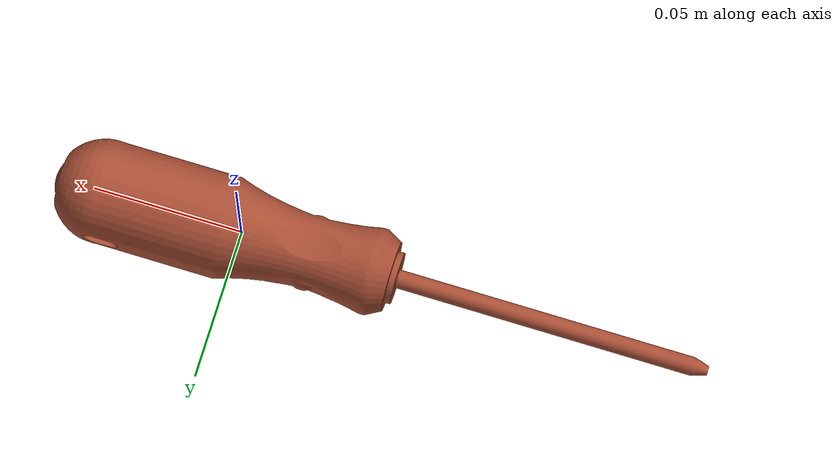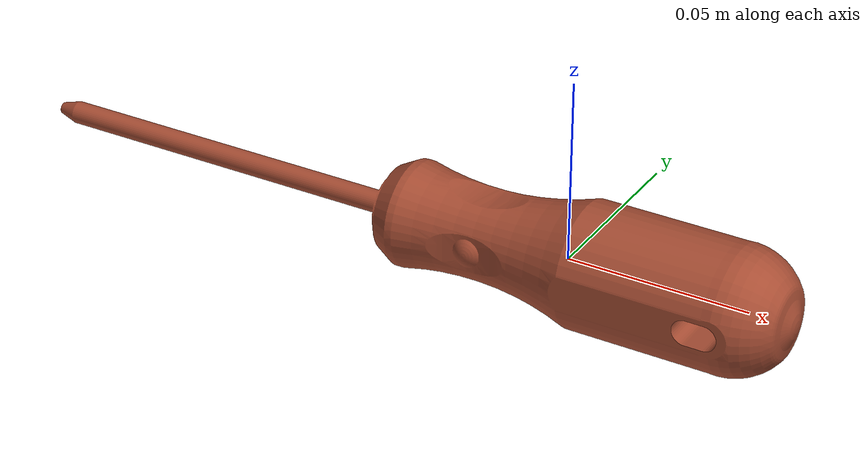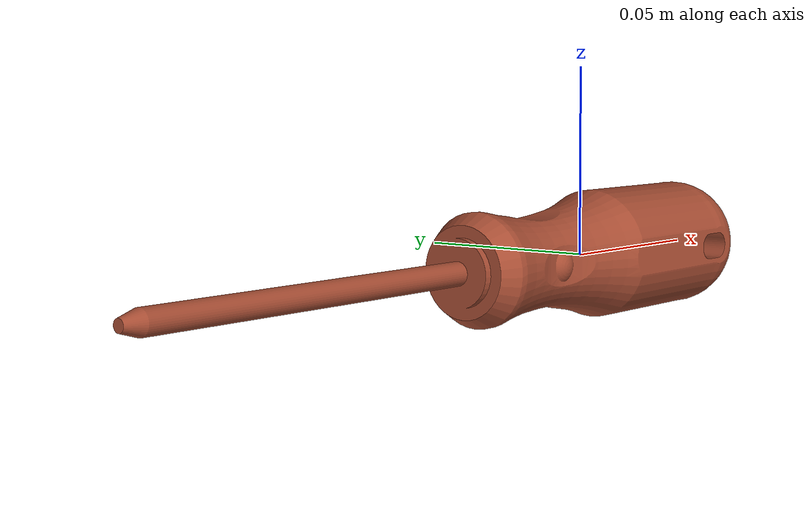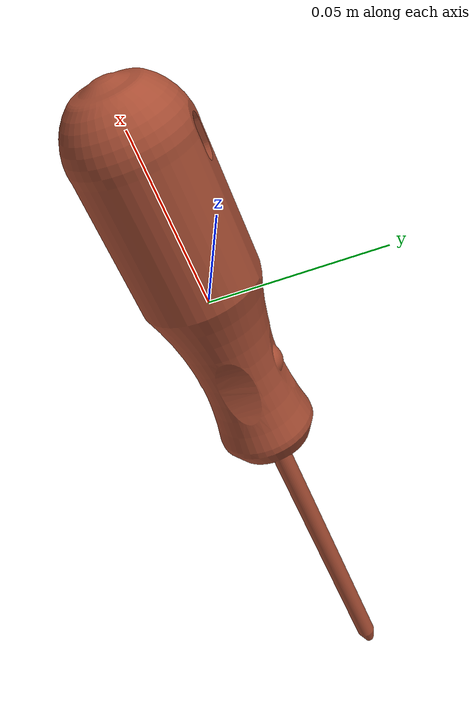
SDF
<?xml version="1.0" ?>
<sdf version="1.6">
  <model name="YCB_phillips_screwdriver">
    <static>false</static>
    <link name="link">
      <inertial>
        <mass>1.0</mass>
        <inertia>
          <ixx>0.001</ixx>
          <iyy>0.001</iyy>
          <izz>0.001</izz>
          <ixy>0.0</ixy>
          <ixz>0.0</ixz>
          <iyz>0.0</iyz>
        </inertia>
      </inertial>
      <visual name="visual">
        <geometry>
          <mesh>
            <uri>model://YCB_phillips_screwdriver/meshes/model.stl</uri>
          </mesh>
        </geometry>
        <material>
          <script>
            <uri>file://media/materials/scripts/gazebo.material</uri>
            <name>Gazebo/Bricks</name>
          </script>
        </material>
      </visual>
      <collision name="collision">
        <geometry>
          <mesh>
            <uri>model://YCB_phillips_screwdriver/meshes/model.stl</uri>
          </mesh>
        </geometry>
      </collision>
    </link>
  </model>
</sdf>
